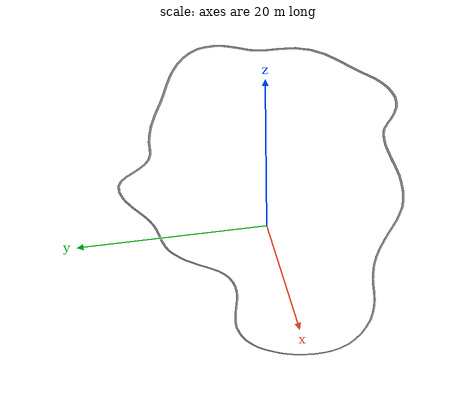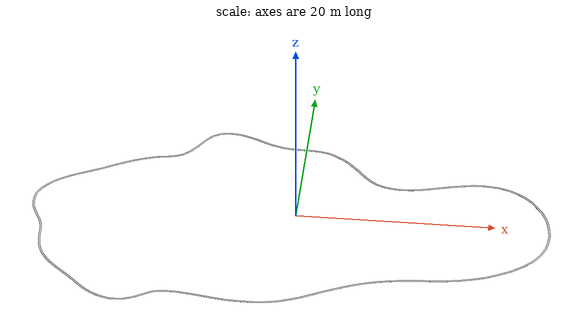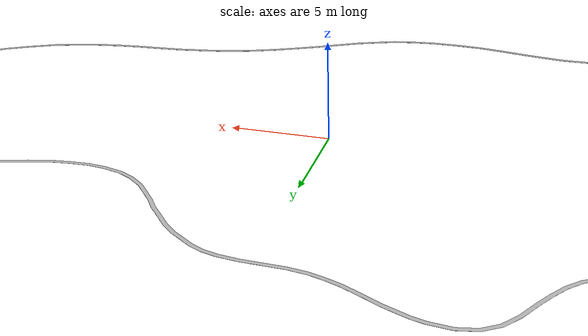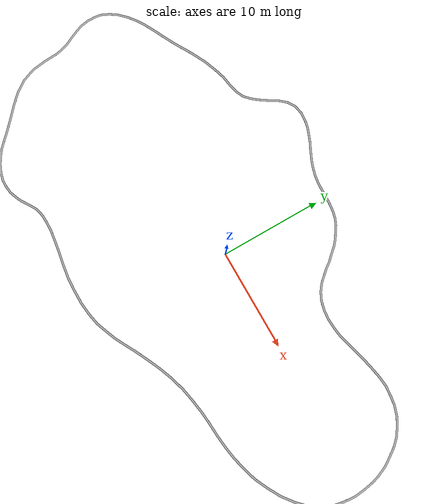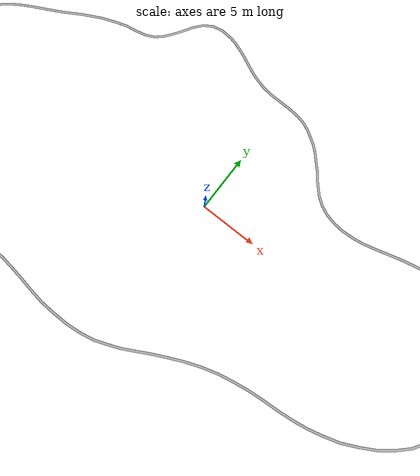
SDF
<?xml version="1.0"?>
<sdf version="1.5">
    <model name="road">
        <static>true</static>
        <link name="link">
            <collision name="collision">
                <pose>0 0 0 0 0 0</pose>
                <geometry>
                    <mesh>
                        <uri>model://road_3/meshes/road_3.dae</uri>
                    </mesh>
                </geometry>
            </collision>
            <visual name="visual">

              <pose>0 0 0 0 0 0</pose>
              <geometry>
              <mesh>
                 <uri>model://road_3/meshes/road_3.dae</uri>
              </mesh>
              </geometry>

              <material>
                  <script>
                      <uri>model://road_3/materials/scripts</uri>
                      <uri>model://road_3/materials/textures</uri>
                      <name>roadMat/Diffuse</name>
                  </script>
              </material>
             </visual>

        </link>
    </model>
</sdf>
